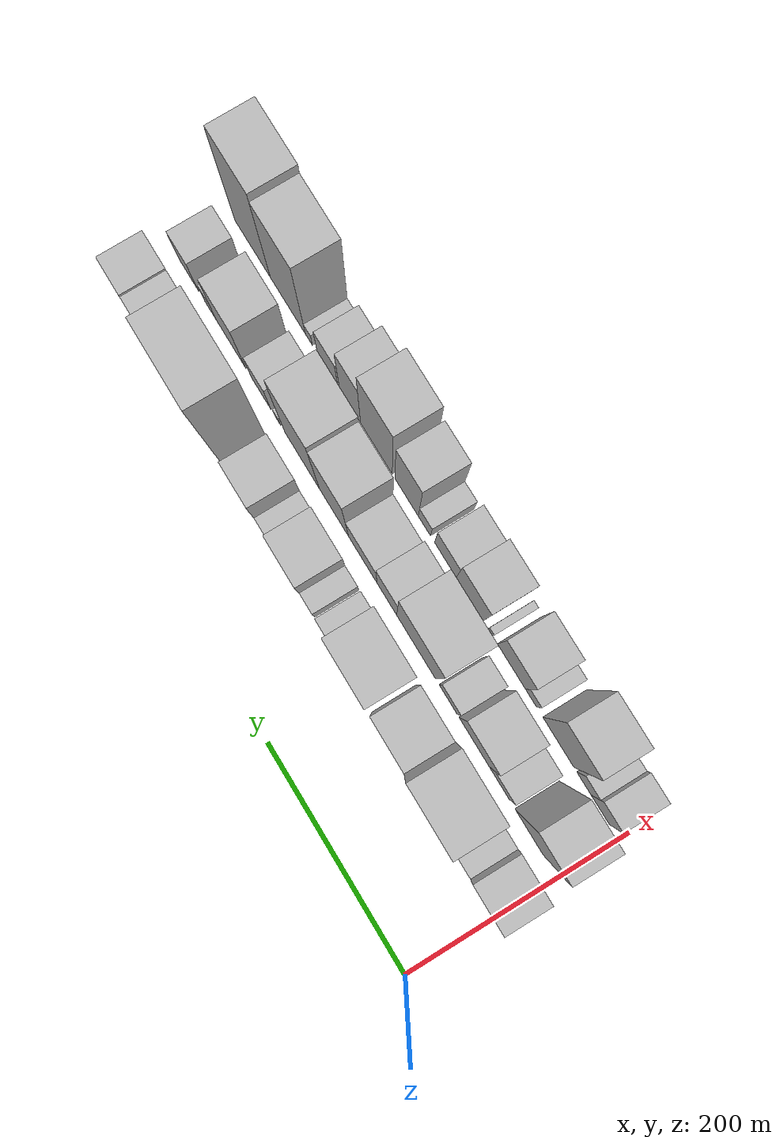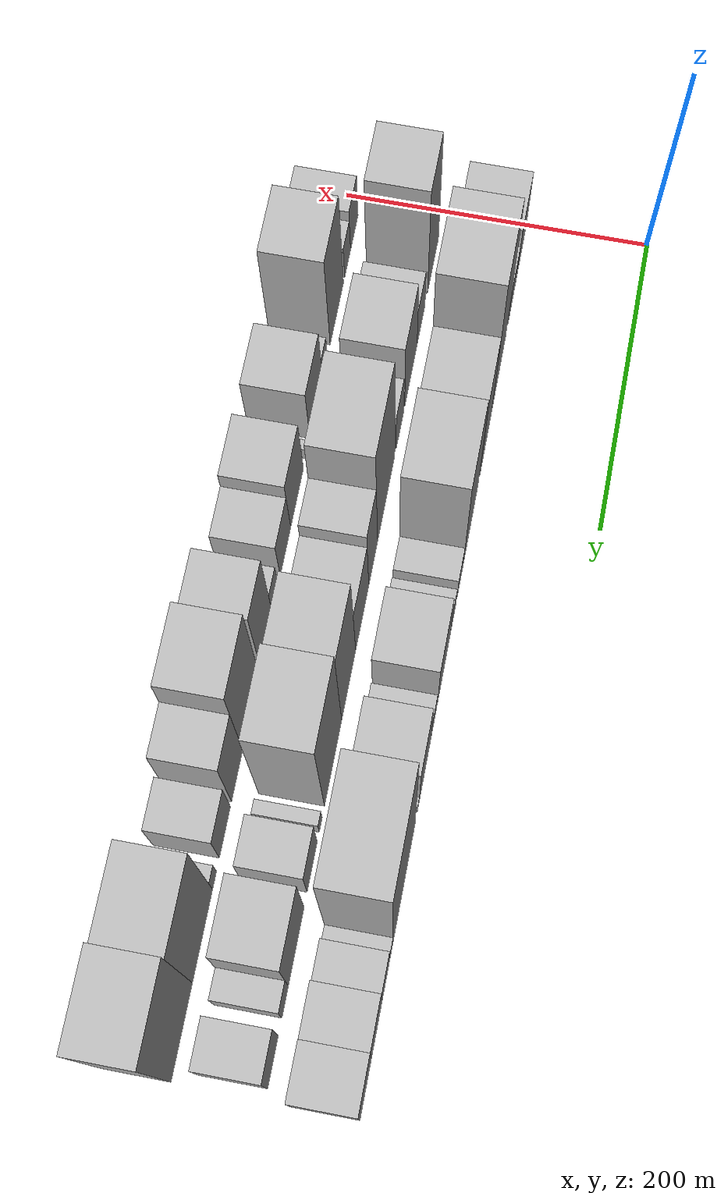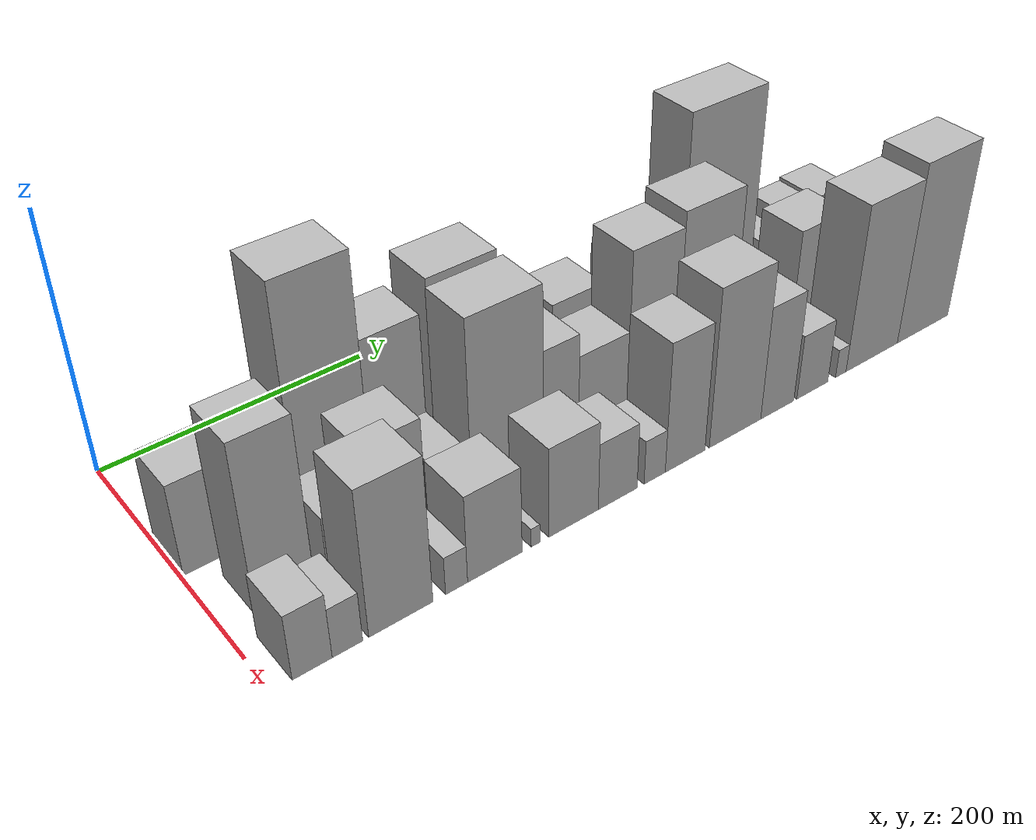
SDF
<sdf version="1.6">
 <world name="default">
  <model name="building_12">
   <static>1</static>
   <pose>100.0000 22.2262 0 0.000000 0.000000 0.000000</pose>
   <link name="link">
    <pose>0 0 36.00 0 0 0</pose>
    <collision name="collision"><geometry><box><size>40.0000 41.4161 72.0000</size></box></geometry></collision>
    <visual name="visual">
     <cast_shadows>0</cast_shadows>
     <geometry><box><size>40.0000 41.4161 72.0000</size></box></geometry>
     <material>
      <script>
       <uri>model://HANNAS_wall/materials/scripts</uri>
       <uri>model://HANNAS_wall/materials/textures</uri>
       <name>vrc/HANNAS_wall</name>
      </script>
     </material>
    </visual>
   </link>
  </model>
  <model name="building_13">
   <static>1</static>
   <pose>100.0000 58.0329 0 0.000000 0.000000 0.000000</pose>
   <link name="link">
    <pose>0 0 25.50 0 0 0</pose>
    <collision name="collision"><geometry><box><size>40.0000 30.1973 51.0000</size></box></geometry></collision>
    <visual name="visual">
     <cast_shadows>0</cast_shadows>
     <geometry><box><size>40.0000 30.1973 51.0000</size></box></geometry>
     <material>
      <script>
       <uri>model://HANNAS_wall/materials/scripts</uri>
       <uri>model://HANNAS_wall/materials/textures</uri>
       <name>vrc/HANNAS_wall</name>
      </script>
     </material>
    </visual>
   </link>
  </model>
  <model name="building_14">
   <static>1</static>
   <pose>100.0000 108.1731 0 0.000000 0.000000 0.000000</pose>
   <link name="link">
    <pose>0 0 90.00 0 0 0</pose>
    <collision name="collision"><geometry><box><size>40.0000 54.0830 180.0000</size></box></geometry></collision>
    <visual name="visual">
     <cast_shadows>0</cast_shadows>
     <geometry><box><size>40.0000 54.0830 180.0000</size></box></geometry>
     <material>
      <script>
       <uri>model://HANNAS_wall/materials/scripts</uri>
       <uri>model://HANNAS_wall/materials/textures</uri>
       <name>vrc/HANNAS_wall</name>
      </script>
     </material>
    </visual>
   </link>
  </model>
  <model name="building_15">
   <static>1</static>
   <pose>100.0000 157.1186 0 0.000000 0.000000 0.000000</pose>
   <link name="link">
    <pose>0 0 57.00 0 0 0</pose>
    <collision name="collision"><geometry><box><size>40.0000 43.8080 114.0000</size></box></geometry></collision>
    <visual name="visual">
     <cast_shadows>0</cast_shadows>
     <geometry><box><size>40.0000 43.8080 114.0000</size></box></geometry>
     <material>
      <script>
       <uri>model://HANNAS_wall/materials/scripts</uri>
       <uri>model://HANNAS_wall/materials/textures</uri>
       <name>vrc/HANNAS_wall</name>
      </script>
     </material>
    </visual>
   </link>
  </model>
  <model name="building_16">
   <static>1</static>
   <pose>100.0000 211.9651 0 0.000000 0.000000 0.000000</pose>
   <link name="link">
    <pose>0 0 69.00 0 0 0</pose>
    <collision name="collision"><geometry><box><size>40.0000 53.8850 138.0000</size></box></geometry></collision>
    <visual name="visual">
     <cast_shadows>0</cast_shadows>
     <geometry><box><size>40.0000 53.8850 138.0000</size></box></geometry>
     <material>
      <script>
       <uri>model://HANNAS_wall/materials/scripts</uri>
       <uri>model://HANNAS_wall/materials/textures</uri>
       <name>vrc/HANNAS_wall</name>
      </script>
     </material>
    </visual>
   </link>
  </model>
  <model name="building_17">
   <static>1</static>
   <pose>100.0000 249.6455 0 0.000000 0.000000 0.000000</pose>
   <link name="link">
    <pose>0 0 18.00 0 0 0</pose>
    <collision name="collision"><geometry><box><size>40.0000 21.4758 36.0000</size></box></geometry></collision>
    <visual name="visual">
     <cast_shadows>0</cast_shadows>
     <geometry><box><size>40.0000 21.4758 36.0000</size></box></geometry>
     <material>
      <script>
       <uri>model://HANNAS_wall/materials/scripts</uri>
       <uri>model://HANNAS_wall/materials/textures</uri>
       <name>vrc/HANNAS_wall</name>
      </script>
     </material>
    </visual>
   </link>
  </model>
  <model name="building_18">
   <static>1</static>
   <pose>100.0000 273.7576 0 0.000000 0.000000 0.000000</pose>
   <link name="link">
    <pose>0 0 16.50 0 0 0</pose>
    <collision name="collision"><geometry><box><size>40.0000 18.7484 33.0000</size></box></geometry></collision>
    <visual name="visual">
     <cast_shadows>0</cast_shadows>
     <geometry><box><size>40.0000 18.7484 33.0000</size></box></geometry>
     <material>
      <script>
       <uri>model://HANNAS_wall/materials/scripts</uri>
       <uri>model://HANNAS_wall/materials/textures</uri>
       <name>vrc/HANNAS_wall</name>
      </script>
     </material>
    </visual>
   </link>
  </model>
  <model name="building_19">
   <static>1</static>
   <pose>100.0000 305.3398 0 0.000000 0.000000 0.000000</pose>
   <link name="link">
    <pose>0 0 37.50 0 0 0</pose>
    <collision name="collision"><geometry><box><size>40.0000 44.4159 75.0000</size></box></geometry></collision>
    <visual name="visual">
     <cast_shadows>0</cast_shadows>
     <geometry><box><size>40.0000 44.4159 75.0000</size></box></geometry>
     <material>
      <script>
       <uri>model://HANNAS_wall/materials/scripts</uri>
       <uri>model://HANNAS_wall/materials/textures</uri>
       <name>vrc/HANNAS_wall</name>
      </script>
     </material>
    </visual>
   </link>
  </model>
  <model name="building_20">
   <static>1</static>
   <pose>100.0000 340.0875 0 0.000000 0.000000 0.000000</pose>
   <link name="link">
    <pose>0 0 16.50 0 0 0</pose>
    <collision name="collision"><geometry><box><size>40.0000 19.0794 33.0000</size></box></geometry></collision>
    <visual name="visual">
     <cast_shadows>0</cast_shadows>
     <geometry><box><size>40.0000 19.0794 33.0000</size></box></geometry>
     <material>
      <script>
       <uri>model://HANNAS_wall/materials/scripts</uri>
       <uri>model://HANNAS_wall/materials/textures</uri>
       <name>vrc/HANNAS_wall</name>
      </script>
     </material>
    </visual>
   </link>
  </model>
  <model name="building_21">
   <static>1</static>
   <pose>100.0000 369.3502 0 0.000000 0.000000 0.000000</pose>
   <link name="link">
    <pose>0 0 39.00 0 0 0</pose>
    <collision name="collision"><geometry><box><size>40.0000 39.4459 78.0000</size></box></geometry></collision>
    <visual name="visual">
     <cast_shadows>0</cast_shadows>
     <geometry><box><size>40.0000 39.4459 78.0000</size></box></geometry>
     <material>
      <script>
       <uri>model://HANNAS_wall/materials/scripts</uri>
       <uri>model://HANNAS_wall/materials/textures</uri>
       <name>vrc/HANNAS_wall</name>
      </script>
     </material>
    </visual>
   </link>
  </model>
  <model name="building_22">
   <static>1</static>
   <pose>100.0000 392.1713 0 0.000000 0.000000 0.000000</pose>
   <link name="link">
    <pose>0 0 7.50 0 0 0</pose>
    <collision name="collision"><geometry><box><size>40.0000 6.1963 15.0000</size></box></geometry></collision>
    <visual name="visual">
     <cast_shadows>0</cast_shadows>
     <geometry><box><size>40.0000 6.1963 15.0000</size></box></geometry>
     <material>
      <script>
       <uri>model://HANNAS_wall/materials/scripts</uri>
       <uri>model://HANNAS_wall/materials/textures</uri>
       <name>vrc/HANNAS_wall</name>
      </script>
     </material>
    </visual>
   </link>
  </model>
  <model name="building_23">
   <static>1</static>
   <pose>100.0000 437.7025 0 0.000000 0.000000 0.000000</pose>
   <link name="link">
    <pose>0 0 90.00 0 0 0</pose>
    <collision name="collision"><geometry><box><size>40.0000 70.8663 180.0000</size></box></geometry></collision>
    <visual name="visual">
     <cast_shadows>0</cast_shadows>
     <geometry><box><size>40.0000 70.8663 180.0000</size></box></geometry>
     <material>
      <script>
       <uri>model://HANNAS_wall/materials/scripts</uri>
       <uri>model://HANNAS_wall/materials/textures</uri>
       <name>vrc/HANNAS_wall</name>
      </script>
     </material>
    </visual>
   </link>
  </model>
  <model name="building_24">
   <static>1</static>
   <pose>100.0000 478.2067 0 0.000000 0.000000 0.000000</pose>
   <link name="link">
    <pose>0 0 12.00 0 0 0</pose>
    <collision name="collision"><geometry><box><size>40.0000 10.1421 24.0000</size></box></geometry></collision>
    <visual name="visual">
     <cast_shadows>0</cast_shadows>
     <geometry><box><size>40.0000 10.1421 24.0000</size></box></geometry>
     <material>
      <script>
       <uri>model://HANNAS_wall/materials/scripts</uri>
       <uri>model://HANNAS_wall/materials/textures</uri>
       <name>vrc/HANNAS_wall</name>
      </script>
     </material>
    </visual>
   </link>
  </model>
  <model name="building_25">
   <static>1</static>
   <pose>100.0000 495.6289 0 0.000000 0.000000 0.000000</pose>
   <link name="link">
    <pose>0 0 22.50 0 0 0</pose>
    <collision name="collision"><geometry><box><size>40.0000 24.7021 45.0000</size></box></geometry></collision>
    <visual name="visual">
     <cast_shadows>0</cast_shadows>
     <geometry><box><size>40.0000 24.7021 45.0000</size></box></geometry>
     <material>
      <script>
       <uri>model://HANNAS_wall/materials/scripts</uri>
       <uri>model://HANNAS_wall/materials/textures</uri>
       <name>vrc/HANNAS_wall</name>
      </script>
     </material>
    </visual>
   </link>
  </model>
  <model name="building_26">
   <static>1</static>
   <pose>100.0000 524.0580 0 0.000000 0.000000 0.000000</pose>
   <link name="link">
    <pose>0 0 30.00 0 0 0</pose>
    <collision name="collision"><geometry><box><size>40.0000 32.1562 60.0000</size></box></geometry></collision>
    <visual name="visual">
     <cast_shadows>0</cast_shadows>
     <geometry><box><size>40.0000 32.1562 60.0000</size></box></geometry>
     <material>
      <script>
       <uri>model://HANNAS_wall/materials/scripts</uri>
       <uri>model://HANNAS_wall/materials/textures</uri>
       <name>vrc/HANNAS_wall</name>
      </script>
     </material>
    </visual>
   </link>
  </model>
  <model name="building_27">
   <static>1</static>
   <pose>100.0000 557.5274 0 0.000000 0.000000 0.000000</pose>
   <link name="link">
    <pose>0 0 31.50 0 0 0</pose>
    <collision name="collision"><geometry><box><size>40.0000 34.7827 63.0000</size></box></geometry></collision>
    <visual name="visual">
     <cast_shadows>0</cast_shadows>
     <geometry><box><size>40.0000 34.7827 63.0000</size></box></geometry>
     <material>
      <script>
       <uri>model://HANNAS_wall/materials/scripts</uri>
       <uri>model://HANNAS_wall/materials/textures</uri>
       <name>vrc/HANNAS_wall</name>
      </script>
     </material>
    </visual>
   </link>
  </model>
  <model name="building_46">
   <static>1</static>
   <pose>155.0000 40.1665 0 0.000000 0.000000 0.000000</pose>
   <link name="link">
    <pose>0 0 66.00 0 0 0</pose>
    <collision name="collision"><geometry><box><size>40.0000 39.9658 132.0000</size></box></geometry></collision>
    <visual name="visual">
     <cast_shadows>0</cast_shadows>
     <geometry><box><size>40.0000 39.9658 132.0000</size></box></geometry>
     <material>
      <script>
       <uri>model://HANNAS_wall/materials/scripts</uri>
       <uri>model://HANNAS_wall/materials/textures</uri>
       <name>vrc/HANNAS_wall</name>
      </script>
     </material>
    </visual>
   </link>
  </model>
  <model name="building_47">
   <static>1</static>
   <pose>155.0000 83.2701 0 0.000000 0.000000 0.000000</pose>
   <link name="link">
    <pose>0 0 24.00 0 0 0</pose>
    <collision name="collision"><geometry><box><size>40.0000 28.2413 48.0000</size></box></geometry></collision>
    <visual name="visual">
     <cast_shadows>0</cast_shadows>
     <geometry><box><size>40.0000 28.2413 48.0000</size></box></geometry>
     <material>
      <script>
       <uri>model://HANNAS_wall/materials/scripts</uri>
       <uri>model://HANNAS_wall/materials/textures</uri>
       <name>vrc/HANNAS_wall</name>
      </script>
     </material>
    </visual>
   </link>
  </model>
  <model name="building_48">
   <static>1</static>
   <pose>155.0000 119.1672 0 0.000000 0.000000 0.000000</pose>
   <link name="link">
    <pose>0 0 43.50 0 0 0</pose>
    <collision name="collision"><geometry><box><size>40.0000 43.5530 87.0000</size></box></geometry></collision>
    <visual name="visual">
     <cast_shadows>0</cast_shadows>
     <geometry><box><size>40.0000 43.5530 87.0000</size></box></geometry>
     <material>
      <script>
       <uri>model://HANNAS_wall/materials/scripts</uri>
       <uri>model://HANNAS_wall/materials/textures</uri>
       <name>vrc/HANNAS_wall</name>
      </script>
     </material>
    </visual>
   </link>
  </model>
  <model name="building_49">
   <static>1</static>
   <pose>155.0000 157.0462 0 0.000000 0.000000 0.000000</pose>
   <link name="link">
    <pose>0 0 25.50 0 0 0</pose>
    <collision name="collision"><geometry><box><size>40.0000 26.2050 51.0000</size></box></geometry></collision>
    <visual name="visual">
     <cast_shadows>0</cast_shadows>
     <geometry><box><size>40.0000 26.2050 51.0000</size></box></geometry>
     <material>
      <script>
       <uri>model://HANNAS_wall/materials/scripts</uri>
       <uri>model://HANNAS_wall/materials/textures</uri>
       <name>vrc/HANNAS_wall</name>
      </script>
     </material>
    </visual>
   </link>
  </model>
  <model name="building_50">
   <static>1</static>
   <pose>155.0000 203.9483 0 0.000000 0.000000 0.000000</pose>
   <link name="link">
    <pose>0 0 72.00 0 0 0</pose>
    <collision name="collision"><geometry><box><size>40.0000 57.5992 144.0000</size></box></geometry></collision>
    <visual name="visual">
     <cast_shadows>0</cast_shadows>
     <geometry><box><size>40.0000 57.5992 144.0000</size></box></geometry>
     <material>
      <script>
       <uri>model://HANNAS_wall/materials/scripts</uri>
       <uri>model://HANNAS_wall/materials/textures</uri>
       <name>vrc/HANNAS_wall</name>
      </script>
     </material>
    </visual>
   </link>
  </model>
  <model name="building_51">
   <static>1</static>
   <pose>155.0000 247.4152 0 0.000000 0.000000 0.000000</pose>
   <link name="link">
    <pose>0 0 46.50 0 0 0</pose>
    <collision name="collision"><geometry><box><size>40.0000 29.3344 93.0000</size></box></geometry></collision>
    <visual name="visual">
     <cast_shadows>0</cast_shadows>
     <geometry><box><size>40.0000 29.3344 93.0000</size></box></geometry>
     <material>
      <script>
       <uri>model://HANNAS_wall/materials/scripts</uri>
       <uri>model://HANNAS_wall/materials/textures</uri>
       <name>vrc/HANNAS_wall</name>
      </script>
     </material>
    </visual>
   </link>
  </model>
  <model name="building_52">
   <static>1</static>
   <pose>155.0000 283.2719 0 0.000000 0.000000 0.000000</pose>
   <link name="link">
    <pose>0 0 37.50 0 0 0</pose>
    <collision name="collision"><geometry><box><size>40.0000 42.3791 75.0000</size></box></geometry></collision>
    <visual name="visual">
     <cast_shadows>0</cast_shadows>
     <geometry><box><size>40.0000 42.3791 75.0000</size></box></geometry>
     <material>
      <script>
       <uri>model://HANNAS_wall/materials/scripts</uri>
       <uri>model://HANNAS_wall/materials/textures</uri>
       <name>vrc/HANNAS_wall</name>
      </script>
     </material>
    </visual>
   </link>
  </model>
  <model name="building_53">
   <static>1</static>
   <pose>155.0000 326.6226 0 0.000000 0.000000 0.000000</pose>
   <link name="link">
    <pose>0 0 69.00 0 0 0</pose>
    <collision name="collision"><geometry><box><size>40.0000 44.3224 138.0000</size></box></geometry></collision>
    <visual name="visual">
     <cast_shadows>0</cast_shadows>
     <geometry><box><size>40.0000 44.3224 138.0000</size></box></geometry>
     <material>
      <script>
       <uri>model://HANNAS_wall/materials/scripts</uri>
       <uri>model://HANNAS_wall/materials/textures</uri>
       <name>vrc/HANNAS_wall</name>
      </script>
     </material>
    </visual>
   </link>
  </model>
  <model name="building_54">
   <static>1</static>
   <pose>155.0000 375.3625 0 0.000000 0.000000 0.000000</pose>
   <link name="link">
    <pose>0 0 75.00 0 0 0</pose>
    <collision name="collision"><geometry><box><size>40.0000 53.1574 150.0000</size></box></geometry></collision>
    <visual name="visual">
     <cast_shadows>0</cast_shadows>
     <geometry><box><size>40.0000 53.1574 150.0000</size></box></geometry>
     <material>
      <script>
       <uri>model://HANNAS_wall/materials/scripts</uri>
       <uri>model://HANNAS_wall/materials/textures</uri>
       <name>vrc/HANNAS_wall</name>
      </script>
     </material>
    </visual>
   </link>
  </model>
  <model name="building_55">
   <static>1</static>
   <pose>155.0000 413.4362 0 0.000000 0.000000 0.000000</pose>
   <link name="link">
    <pose>0 0 10.50 0 0 0</pose>
    <collision name="collision"><geometry><box><size>40.0000 8.9899 21.0000</size></box></geometry></collision>
    <visual name="visual">
     <cast_shadows>0</cast_shadows>
     <geometry><box><size>40.0000 8.9899 21.0000</size></box></geometry>
     <material>
      <script>
       <uri>model://HANNAS_wall/materials/scripts</uri>
       <uri>model://HANNAS_wall/materials/textures</uri>
       <name>vrc/HANNAS_wall</name>
      </script>
     </material>
    </visual>
   </link>
  </model>
  <model name="building_56">
   <static>1</static>
   <pose>155.0000 438.9637 0 0.000000 0.000000 0.000000</pose>
   <link name="link">
    <pose>0 0 27.00 0 0 0</pose>
    <collision name="collision"><geometry><box><size>40.0000 30.0651 54.0000</size></box></geometry></collision>
    <visual name="visual">
     <cast_shadows>0</cast_shadows>
     <geometry><box><size>40.0000 30.0651 54.0000</size></box></geometry>
     <material>
      <script>
       <uri>model://HANNAS_wall/materials/scripts</uri>
       <uri>model://HANNAS_wall/materials/textures</uri>
       <name>vrc/HANNAS_wall</name>
      </script>
     </material>
    </visual>
   </link>
  </model>
  <model name="building_57">
   <static>1</static>
   <pose>155.0000 486.0307 0 0.000000 0.000000 0.000000</pose>
   <link name="link">
    <pose>0 0 45.00 0 0 0</pose>
    <collision name="collision"><geometry><box><size>40.0000 46.0691 90.0000</size></box></geometry></collision>
    <visual name="visual">
     <cast_shadows>0</cast_shadows>
     <geometry><box><size>40.0000 46.0691 90.0000</size></box></geometry>
     <material>
      <script>
       <uri>model://HANNAS_wall/materials/scripts</uri>
       <uri>model://HANNAS_wall/materials/textures</uri>
       <name>vrc/HANNAS_wall</name>
      </script>
     </material>
    </visual>
   </link>
  </model>
  <model name="building_58">
   <static>1</static>
   <pose>155.0000 518.2929 0 0.000000 0.000000 0.000000</pose>
   <link name="link">
    <pose>0 0 18.00 0 0 0</pose>
    <collision name="collision"><geometry><box><size>40.0000 18.4553 36.0000</size></box></geometry></collision>
    <visual name="visual">
     <cast_shadows>0</cast_shadows>
     <geometry><box><size>40.0000 18.4553 36.0000</size></box></geometry>
     <material>
      <script>
       <uri>model://HANNAS_wall/materials/scripts</uri>
       <uri>model://HANNAS_wall/materials/textures</uri>
       <name>vrc/HANNAS_wall</name>
      </script>
     </material>
    </visual>
   </link>
  </model>
  <model name="building_59">
   <static>1</static>
   <pose>155.0000 552.5437 0 0.000000 0.000000 0.000000</pose>
   <link name="link">
    <pose>0 0 28.50 0 0 0</pose>
    <collision name="collision"><geometry><box><size>40.0000 30.0464 57.0000</size></box></geometry></collision>
    <visual name="visual">
     <cast_shadows>0</cast_shadows>
     <geometry><box><size>40.0000 30.0464 57.0000</size></box></geometry>
     <material>
      <script>
       <uri>model://HANNAS_wall/materials/scripts</uri>
       <uri>model://HANNAS_wall/materials/textures</uri>
       <name>vrc/HANNAS_wall</name>
      </script>
     </material>
    </visual>
   </link>
  </model>
  <model name="building_76">
   <static>1</static>
   <pose>210.0000 25.8821 0 0.000000 0.000000 0.000000</pose>
   <link name="link">
    <pose>0 0 25.50 0 0 0</pose>
    <collision name="collision"><geometry><box><size>40.0000 25.8713 51.0000</size></box></geometry></collision>
    <visual name="visual">
     <cast_shadows>0</cast_shadows>
     <geometry><box><size>40.0000 25.8713 51.0000</size></box></geometry>
     <material>
      <script>
       <uri>model://HANNAS_wall/materials/scripts</uri>
       <uri>model://HANNAS_wall/materials/textures</uri>
       <name>vrc/HANNAS_wall</name>
      </script>
     </material>
    </visual>
   </link>
  </model>
  <model name="building_77">
   <static>1</static>
   <pose>210.0000 48.9108 0 0.000000 0.000000 0.000000</pose>
   <link name="link">
    <pose>0 0 19.50 0 0 0</pose>
    <collision name="collision"><geometry><box><size>40.0000 20.1861 39.0000</size></box></geometry></collision>
    <visual name="visual">
     <cast_shadows>0</cast_shadows>
     <geometry><box><size>40.0000 20.1861 39.0000</size></box></geometry>
     <material>
      <script>
       <uri>model://HANNAS_wall/materials/scripts</uri>
       <uri>model://HANNAS_wall/materials/textures</uri>
       <name>vrc/HANNAS_wall</name>
      </script>
     </material>
    </visual>
   </link>
  </model>
  <model name="building_78">
   <static>1</static>
   <pose>210.0000 85.2325 0 0.000000 0.000000 0.000000</pose>
   <link name="link">
    <pose>0 0 57.00 0 0 0</pose>
    <collision name="collision"><geometry><box><size>40.0000 44.4574 114.0000</size></box></geometry></collision>
    <visual name="visual">
     <cast_shadows>0</cast_shadows>
     <geometry><box><size>40.0000 44.4574 114.0000</size></box></geometry>
     <material>
      <script>
       <uri>model://HANNAS_wall/materials/scripts</uri>
       <uri>model://HANNAS_wall/materials/textures</uri>
       <name>vrc/HANNAS_wall</name>
      </script>
     </material>
    </visual>
   </link>
  </model>
  <model name="building_79">
   <static>1</static>
   <pose>210.0000 124.4448 0 0.000000 0.000000 0.000000</pose>
   <link name="link">
    <pose>0 0 15.00 0 0 0</pose>
    <collision name="collision"><geometry><box><size>40.0000 15.9672 30.0000</size></box></geometry></collision>
    <visual name="visual">
     <cast_shadows>0</cast_shadows>
     <geometry><box><size>40.0000 15.9672 30.0000</size></box></geometry>
     <material>
      <script>
       <uri>model://HANNAS_wall/materials/scripts</uri>
       <uri>model://HANNAS_wall/materials/textures</uri>
       <name>vrc/HANNAS_wall</name>
      </script>
     </material>
    </visual>
   </link>
  </model>
  <model name="building_80">
   <static>1</static>
   <pose>210.0000 152.8301 0 0.000000 0.000000 0.000000</pose>
   <link name="link">
    <pose>0 0 34.50 0 0 0</pose>
    <collision name="collision"><geometry><box><size>40.0000 40.8034 69.0000</size></box></geometry></collision>
    <visual name="visual">
     <cast_shadows>0</cast_shadows>
     <geometry><box><size>40.0000 40.8034 69.0000</size></box></geometry>
     <material>
      <script>
       <uri>model://HANNAS_wall/materials/scripts</uri>
       <uri>model://HANNAS_wall/materials/textures</uri>
       <name>vrc/HANNAS_wall</name>
      </script>
     </material>
    </visual>
   </link>
  </model>
  <model name="building_81">
   <static>1</static>
   <pose>210.0000 183.5994 0 0.000000 0.000000 0.000000</pose>
   <link name="link">
    <pose>0 0 7.50 0 0 0</pose>
    <collision name="collision"><geometry><box><size>40.0000 6.7352 15.0000</size></box></geometry></collision>
    <visual name="visual">
     <cast_shadows>0</cast_shadows>
     <geometry><box><size>40.0000 6.7352 15.0000</size></box></geometry>
     <material>
      <script>
       <uri>model://HANNAS_wall/materials/scripts</uri>
       <uri>model://HANNAS_wall/materials/textures</uri>
       <name>vrc/HANNAS_wall</name>
      </script>
     </material>
    </visual>
   </link>
  </model>
  <model name="building_82">
   <static>1</static>
   <pose>210.0000 213.8199 0 0.000000 0.000000 0.000000</pose>
   <link name="link">
    <pose>0 0 36.00 0 0 0</pose>
    <collision name="collision"><geometry><box><size>40.0000 39.7057 72.0000</size></box></geometry></collision>
    <visual name="visual">
     <cast_shadows>0</cast_shadows>
     <geometry><box><size>40.0000 39.7057 72.0000</size></box></geometry>
     <material>
      <script>
       <uri>model://HANNAS_wall/materials/scripts</uri>
       <uri>model://HANNAS_wall/materials/textures</uri>
       <name>vrc/HANNAS_wall</name>
      </script>
     </material>
    </visual>
   </link>
  </model>
  <model name="building_83">
   <static>1</static>
   <pose>210.0000 249.8344 0 0.000000 0.000000 0.000000</pose>
   <link name="link">
    <pose>0 0 27.00 0 0 0</pose>
    <collision name="collision"><geometry><box><size>40.0000 32.3234 54.0000</size></box></geometry></collision>
    <visual name="visual">
     <cast_shadows>0</cast_shadows>
     <geometry><box><size>40.0000 32.3234 54.0000</size></box></geometry>
     <material>
      <script>
       <uri>model://HANNAS_wall/materials/scripts</uri>
       <uri>model://HANNAS_wall/materials/textures</uri>
       <name>vrc/HANNAS_wall</name>
      </script>
     </material>
    </visual>
   </link>
  </model>
  <model name="building_84">
   <static>1</static>
   <pose>210.0000 281.1483 0 0.000000 0.000000 0.000000</pose>
   <link name="link">
    <pose>0 0 18.00 0 0 0</pose>
    <collision name="collision"><geometry><box><size>40.0000 18.3045 36.0000</size></box></geometry></collision>
    <visual name="visual">
     <cast_shadows>0</cast_shadows>
     <geometry><box><size>40.0000 18.3045 36.0000</size></box></geometry>
     <material>
      <script>
       <uri>model://HANNAS_wall/materials/scripts</uri>
       <uri>model://HANNAS_wall/materials/textures</uri>
       <name>vrc/HANNAS_wall</name>
      </script>
     </material>
    </visual>
   </link>
  </model>
  <model name="building_85">
   <static>1</static>
   <pose>210.0000 307.9292 0 0.000000 0.000000 0.000000</pose>
   <link name="link">
    <pose>0 0 52.50 0 0 0</pose>
    <collision name="collision"><geometry><box><size>40.0000 35.2572 105.0000</size></box></geometry></collision>
    <visual name="visual">
     <cast_shadows>0</cast_shadows>
     <geometry><box><size>40.0000 35.2572 105.0000</size></box></geometry>
     <material>
      <script>
       <uri>model://HANNAS_wall/materials/scripts</uri>
       <uri>model://HANNAS_wall/materials/textures</uri>
       <name>vrc/HANNAS_wall</name>
      </script>
     </material>
    </visual>
   </link>
  </model>
  <model name="building_86">
   <static>1</static>
   <pose>210.0000 353.5382 0 0.000000 0.000000 0.000000</pose>
   <link name="link">
    <pose>0 0 64.50 0 0 0</pose>
    <collision name="collision"><geometry><box><size>40.0000 47.9608 129.0000</size></box></geometry></collision>
    <visual name="visual">
     <cast_shadows>0</cast_shadows>
     <geometry><box><size>40.0000 47.9608 129.0000</size></box></geometry>
     <material>
      <script>
       <uri>model://HANNAS_wall/materials/scripts</uri>
       <uri>model://HANNAS_wall/materials/textures</uri>
       <name>vrc/HANNAS_wall</name>
      </script>
     </material>
    </visual>
   </link>
  </model>
  <model name="building_87">
   <static>1</static>
   <pose>210.0000 393.6126 0 0.000000 0.000000 0.000000</pose>
   <link name="link">
    <pose>0 0 46.50 0 0 0</pose>
    <collision name="collision"><geometry><box><size>40.0000 32.1880 93.0000</size></box></geometry></collision>
    <visual name="visual">
     <cast_shadows>0</cast_shadows>
     <geometry><box><size>40.0000 32.1880 93.0000</size></box></geometry>
     <material>
      <script>
       <uri>model://HANNAS_wall/materials/scripts</uri>
       <uri>model://HANNAS_wall/materials/textures</uri>
       <name>vrc/HANNAS_wall</name>
      </script>
     </material>
    </visual>
   </link>
  </model>
  <model name="building_88">
   <static>1</static>
   <pose>210.0000 428.2589 0 0.000000 0.000000 0.000000</pose>
   <link name="link">
    <pose>0 0 27.00 0 0 0</pose>
    <collision name="collision"><geometry><box><size>40.0000 31.1046 54.0000</size></box></geometry></collision>
    <visual name="visual">
     <cast_shadows>0</cast_shadows>
     <geometry><box><size>40.0000 31.1046 54.0000</size></box></geometry>
     <material>
      <script>
       <uri>model://HANNAS_wall/materials/scripts</uri>
       <uri>model://HANNAS_wall/materials/textures</uri>
       <name>vrc/HANNAS_wall</name>
      </script>
     </material>
    </visual>
   </link>
  </model>
  <model name="building_89">
   <static>1</static>
   <pose>210.0000 457.2246 0 0.000000 0.000000 0.000000</pose>
   <link name="link">
    <pose>0 0 12.00 0 0 0</pose>
    <collision name="collision"><geometry><box><size>40.0000 10.8267 24.0000</size></box></geometry></collision>
    <visual name="visual">
     <cast_shadows>0</cast_shadows>
     <geometry><box><size>40.0000 10.8267 24.0000</size></box></geometry>
     <material>
      <script>
       <uri>model://HANNAS_wall/materials/scripts</uri>
       <uri>model://HANNAS_wall/materials/textures</uri>
       <name>vrc/HANNAS_wall</name>
      </script>
     </material>
    </visual>
   </link>
  </model>
  <model name="building_90">
   <static>1</static>
   <pose>210.0000 490.0921 0 0.000000 0.000000 0.000000</pose>
   <link name="link">
    <pose>0 0 69.00 0 0 0</pose>
    <collision name="collision"><geometry><box><size>40.0000 54.9084 138.0000</size></box></geometry></collision>
    <visual name="visual">
     <cast_shadows>0</cast_shadows>
     <geometry><box><size>40.0000 54.9084 138.0000</size></box></geometry>
     <material>
      <script>
       <uri>model://HANNAS_wall/materials/scripts</uri>
       <uri>model://HANNAS_wall/materials/textures</uri>
       <name>vrc/HANNAS_wall</name>
      </script>
     </material>
    </visual>
   </link>
  </model>
  <model name="building_91">
   <static>1</static>
   <pose>210.0000 545.8829 0 0.000000 0.000000 0.000000</pose>
   <link name="link">
    <pose>0 0 75.00 0 0 0</pose>
    <collision name="collision"><geometry><box><size>40.0000 56.6731 150.0000</size></box></geometry></collision>
    <visual name="visual">
     <cast_shadows>0</cast_shadows>
     <geometry><box><size>40.0000 56.6731 150.0000</size></box></geometry>
     <material>
      <script>
       <uri>model://HANNAS_wall/materials/scripts</uri>
       <uri>model://HANNAS_wall/materials/textures</uri>
       <name>vrc/HANNAS_wall</name>
      </script>
     </material>
    </visual>
   </link>
  </model>
 </world>
</sdf>
